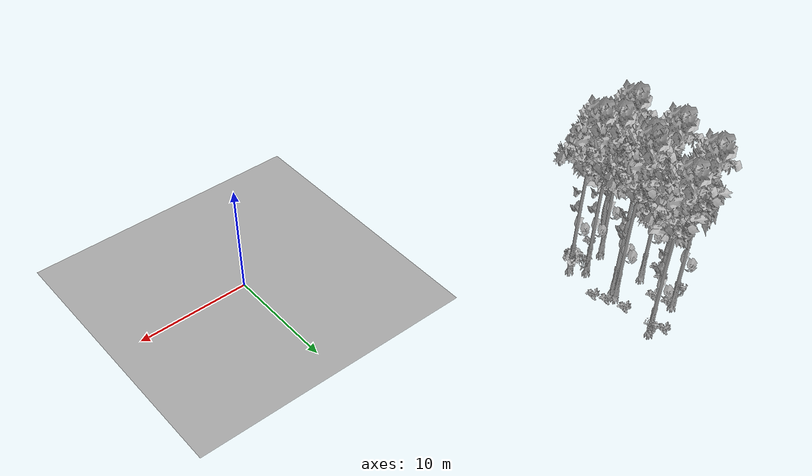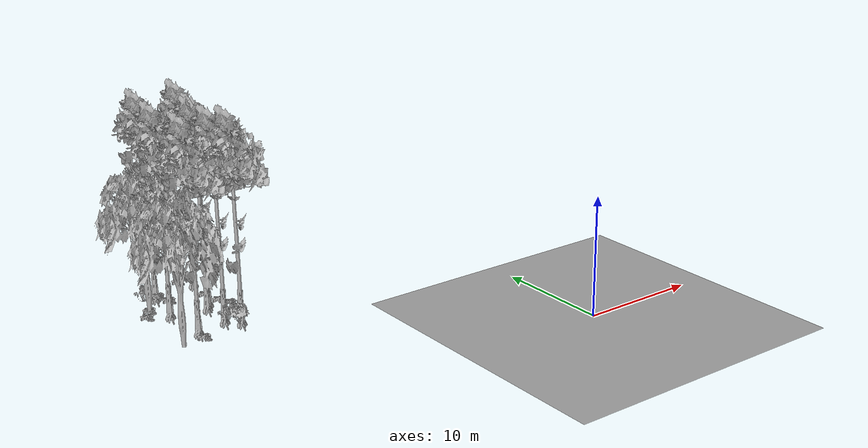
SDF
<sdf version="1.7">
 <world name="default">
  <model name="ground_plane">
   <static>1</static>
   <link name="link">
    <collision name="collision">
     <pose>-50 0 0 0 -0 0</pose>
     <geometry><plane><normal>0 0 1</normal><size>80 80</size></plane></geometry>
     <surface><contact><ode><min_depth>0.01</min_depth><max_vel>0</max_vel></ode></contact></surface>
    </collision>
    <visual name="grass">
     <cast_shadows>0</cast_shadows>
     <geometry>
      <mesh>
       <scale>0.46714285714285714 0.46714285714285714 0.1</scale>
       <uri>file://grass_plane/meshes/grass_plane.dae</uri>
      </mesh>
     </geometry>
    </visual>
   </link>
  </model>
  <model name="Tree 129">
   <static>1</static>
   <pose>-23.40892433570481 17.28746921560525 0 1.57079 -0 0</pose>
   <link name="link">
    <collision name="collision">
     <geometry><mesh><scale>3.5 5 3.5</scale><uri>model://tree_9/meshes/tree_9.obj</uri></mesh></geometry>
    </collision>
    <visual name="visual">
     <geometry><mesh><scale>3.5 5 3.5</scale><uri>model://tree_9/meshes/tree_9.obj</uri></mesh></geometry>
    </visual>
   </link>
  </model>
  <model name="Tree 136">
   <static>1</static>
   <pose>-27.603602183344186 21.934277363882046 0 1.57079 -0 0</pose>
   <link name="link">
    <collision name="collision">
     <geometry><mesh><scale>3.5 5 3.5</scale><uri>model://tree_2/meshes/tree_2.obj</uri></mesh></geometry>
    </collision>
    <visual name="visual">
     <geometry><mesh><scale>3.5 5 3.5</scale><uri>model://tree_2/meshes/tree_2.obj</uri></mesh></geometry>
    </visual>
   </link>
  </model>
  <model name="Tree 303">
   <static>1</static>
   <pose>-25.700586785334423 24.637079907568292 0 1.57079 -0 0</pose>
   <link name="link">
    <collision name="collision">
     <geometry><mesh><scale>3.5 5 3.5</scale><uri>model://tree_9/meshes/tree_9.obj</uri></mesh></geometry>
    </collision>
    <visual name="visual">
     <geometry><mesh><scale>3.5 5 3.5</scale><uri>model://tree_9/meshes/tree_9.obj</uri></mesh></geometry>
    </visual>
   </link>
  </model>
  <model name="Tree 304">
   <static>1</static>
   <pose>-21.881352826807394 25.359205514353903 0 1.57079 -0 0</pose>
   <link name="link">
    <collision name="collision">
     <geometry><mesh><scale>3.5 5 3.5</scale><uri>model://tree_9/meshes/tree_9.obj</uri></mesh></geometry>
    </collision>
    <visual name="visual">
     <geometry><mesh><scale>3.5 5 3.5</scale><uri>model://tree_9/meshes/tree_9.obj</uri></mesh></geometry>
    </visual>
   </link>
  </model>
  <model name="Tree 388">
   <static>1</static>
   <pose>-23.294179598649023 20.310925493503532 0 1.57079 -0 0</pose>
   <link name="link">
    <collision name="collision">
     <geometry><mesh><scale>3.5 5 3.5</scale><uri>model://tree_9/meshes/tree_9.obj</uri></mesh></geometry>
    </collision>
    <visual name="visual">
     <geometry><mesh><scale>3.5 5 3.5</scale><uri>model://tree_9/meshes/tree_9.obj</uri></mesh></geometry>
    </visual>
   </link>
  </model>
  <model name="Tree 436">
   <static>1</static>
   <pose>-26.03589402461475 16.6128923784523 0 1.57079 -0 0</pose>
   <link name="link">
    <collision name="collision">
     <geometry><mesh><scale>3.5 5 3.5</scale><uri>model://tree_9/meshes/tree_9.obj</uri></mesh></geometry>
    </collision>
    <visual name="visual">
     <geometry><mesh><scale>3.5 5 3.5</scale><uri>model://tree_9/meshes/tree_9.obj</uri></mesh></geometry>
    </visual>
   </link>
  </model>
  <model name="Tree 487">
   <static>1</static>
   <pose>-22.853979682084734 20.948290147728173 0 1.57079 -0 0</pose>
   <link name="link">
    <collision name="collision">
     <geometry><mesh><scale>3.5 5 3.5</scale><uri>model://tree_9/meshes/tree_9.obj</uri></mesh></geometry>
    </collision>
    <visual name="visual">
     <geometry><mesh><scale>3.5 5 3.5</scale><uri>model://tree_9/meshes/tree_9.obj</uri></mesh></geometry>
    </visual>
   </link>
  </model>
  <model name="Tree 537">
   <static>1</static>
   <pose>-28.34727057013489 14.73686172754035 0 1.57079 -0 0</pose>
   <link name="link">
    <collision name="collision">
     <geometry><mesh><scale>3.5 5 3.5</scale><uri>model://tree_2/meshes/tree_2.obj</uri></mesh></geometry>
    </collision>
    <visual name="visual">
     <geometry><mesh><scale>3.5 5 3.5</scale><uri>model://tree_2/meshes/tree_2.obj</uri></mesh></geometry>
    </visual>
   </link>
  </model>
  <model name="Tree 601">
   <static>1</static>
   <pose>-22.458807775539917 16.252764671156505 0 1.57079 -0 0</pose>
   <link name="link">
    <collision name="collision">
     <geometry><mesh><scale>3.5 5 3.5</scale><uri>model://tree_9/meshes/tree_9.obj</uri></mesh></geometry>
    </collision>
    <visual name="visual">
     <geometry><mesh><scale>3.5 5 3.5</scale><uri>model://tree_9/meshes/tree_9.obj</uri></mesh></geometry>
    </visual>
   </link>
  </model>
  <model name="Tree 612">
   <static>1</static>
   <pose>-26.329051728064684 20.812638374236784 0 1.57079 -0 0</pose>
   <link name="link">
    <collision name="collision">
     <geometry><mesh><scale>3.5 5 3.5</scale><uri>model://tree_9/meshes/tree_9.obj</uri></mesh></geometry>
    </collision>
    <visual name="visual">
     <geometry><mesh><scale>3.5 5 3.5</scale><uri>model://tree_9/meshes/tree_9.obj</uri></mesh></geometry>
    </visual>
   </link>
  </model>
  <model name="Bush 14">
   <static>1</static>
   <pose>-23.03264223540435 25.894125162868534 0 1.57079 -0 0</pose>
   <link name="link">
    <collision name="collision">
     <geometry><mesh><scale>2 2 2</scale><uri>model://bush_2/meshes/bush_2.obj</uri></mesh></geometry>
     <surface><contact><collide_without_contact>false</collide_without_contact></contact></surface>
    </collision>
    <visual name="visual">
     <geometry><mesh><scale>2 2 2</scale><uri>model://bush_2/meshes/bush_2.obj</uri></mesh></geometry>
    </visual>
   </link>
  </model>
  <model name="Bush 26">
   <static>1</static>
   <pose>-22.888693122174896 15.851306059260295 0 1.57079 -0 0</pose>
   <link name="link">
    <collision name="collision">
     <geometry><mesh><scale>2 2 2</scale><uri>model://bush_1/meshes/bush_1.obj</uri></mesh></geometry>
     <surface><contact><collide_without_contact>false</collide_without_contact></contact></surface>
    </collision>
    <visual name="visual">
     <geometry><mesh><scale>2 2 2</scale><uri>model://bush_1/meshes/bush_1.obj</uri></mesh></geometry>
    </visual>
   </link>
  </model>
  <model name="Bush 97">
   <static>1</static>
   <pose>-21.62113764359651 19.598484132745206 0 1.57079 -0 0</pose>
   <link name="link">
    <collision name="collision">
     <geometry><mesh><scale>2 2 2</scale><uri>model://bush_2/meshes/bush_2.obj</uri></mesh></geometry>
     <surface><contact><collide_without_contact>false</collide_without_contact></contact></surface>
    </collision>
    <visual name="visual">
     <geometry><mesh><scale>2 2 2</scale><uri>model://bush_2/meshes/bush_2.obj</uri></mesh></geometry>
    </visual>
   </link>
  </model>
  <model name="Bush 110">
   <static>1</static>
   <pose>-22.080700465748013 20.64742308127783 0 1.57079 -0 0</pose>
   <link name="link">
    <collision name="collision">
     <geometry><mesh><scale>2 2 2</scale><uri>model://bush_2/meshes/bush_2.obj</uri></mesh></geometry>
     <surface><contact><collide_without_contact>false</collide_without_contact></contact></surface>
    </collision>
    <visual name="visual">
     <geometry><mesh><scale>2 2 2</scale><uri>model://bush_2/meshes/bush_2.obj</uri></mesh></geometry>
    </visual>
   </link>
  </model>
  <model name="Bush 116">
   <static>1</static>
   <pose>-23.362835297587644 16.91259485121951 0 1.57079 -0 0</pose>
   <link name="link">
    <collision name="collision">
     <geometry><mesh><scale>2 2 2</scale><uri>model://bush_4/meshes/bush_4.obj</uri></mesh></geometry>
     <surface><contact><collide_without_contact>false</collide_without_contact></contact></surface>
    </collision>
    <visual name="visual">
     <geometry><mesh><scale>2 2 2</scale><uri>model://bush_4/meshes/bush_4.obj</uri></mesh></geometry>
    </visual>
   </link>
  </model>
  <model name="Bush 377">
   <static>1</static>
   <pose>-26.410448484760643 14.962787972349787 0 1.57079 -0 0</pose>
   <link name="link">
    <collision name="collision">
     <geometry><mesh><scale>2 2 2</scale><uri>model://bush_2/meshes/bush_2.obj</uri></mesh></geometry>
     <surface><contact><collide_without_contact>false</collide_without_contact></contact></surface>
    </collision>
    <visual name="visual">
     <geometry><mesh><scale>2 2 2</scale><uri>model://bush_2/meshes/bush_2.obj</uri></mesh></geometry>
    </visual>
   </link>
  </model>
  <model name="Bush 403">
   <static>1</static>
   <pose>-25.70761787458653 24.184698932840917 0 1.57079 -0 0</pose>
   <link name="link">
    <collision name="collision">
     <geometry><mesh><scale>2 2 2</scale><uri>model://bush_2/meshes/bush_2.obj</uri></mesh></geometry>
     <surface><contact><collide_without_contact>false</collide_without_contact></contact></surface>
    </collision>
    <visual name="visual">
     <geometry><mesh><scale>2 2 2</scale><uri>model://bush_2/meshes/bush_2.obj</uri></mesh></geometry>
    </visual>
   </link>
  </model>
  <model name="Bush 416">
   <static>1</static>
   <pose>-27.56929098832884 21.949422588332162 0 1.57079 -0 0</pose>
   <link name="link">
    <collision name="collision">
     <geometry><mesh><scale>2 2 2</scale><uri>model://bush_2/meshes/bush_2.obj</uri></mesh></geometry>
     <surface><contact><collide_without_contact>false</collide_without_contact></contact></surface>
    </collision>
    <visual name="visual">
     <geometry><mesh><scale>2 2 2</scale><uri>model://bush_2/meshes/bush_2.obj</uri></mesh></geometry>
    </visual>
   </link>
  </model>
  <model name="Bush 425">
   <static>1</static>
   <pose>-22.477452533587208 22.258564319463908 0 1.57079 -0 0</pose>
   <link name="link">
    <collision name="collision">
     <geometry><mesh><scale>2 2 2</scale><uri>model://bush_2/meshes/bush_2.obj</uri></mesh></geometry>
     <surface><contact><collide_without_contact>false</collide_without_contact></contact></surface>
    </collision>
    <visual name="visual">
     <geometry><mesh><scale>2 2 2</scale><uri>model://bush_2/meshes/bush_2.obj</uri></mesh></geometry>
    </visual>
   </link>
  </model>
  <model name="Bush 573">
   <static>1</static>
   <pose>-28.262485715980816 20.93530583405954 0 1.57079 -0 0</pose>
   <link name="link">
    <collision name="collision">
     <geometry><mesh><scale>2 2 2</scale><uri>model://bush_2/meshes/bush_2.obj</uri></mesh></geometry>
     <surface><contact><collide_without_contact>false</collide_without_contact></contact></surface>
    </collision>
    <visual name="visual">
     <geometry><mesh><scale>2 2 2</scale><uri>model://bush_2/meshes/bush_2.obj</uri></mesh></geometry>
    </visual>
   </link>
  </model>
  <model name="Bush 590">
   <static>1</static>
   <pose>-26.900944469483697 24.281833985859407 0 1.57079 -0 0</pose>
   <link name="link">
    <collision name="collision">
     <geometry><mesh><scale>2 2 2</scale><uri>model://bush_4/meshes/bush_4.obj</uri></mesh></geometry>
     <surface><contact><collide_without_contact>false</collide_without_contact></contact></surface>
    </collision>
    <visual name="visual">
     <geometry><mesh><scale>2 2 2</scale><uri>model://bush_4/meshes/bush_4.obj</uri></mesh></geometry>
    </visual>
   </link>
  </model>
  <model name="Bush 605">
   <static>1</static>
   <pose>-21.376829817688762 25.845029038162977 0 1.57079 -0 0</pose>
   <link name="link">
    <collision name="collision">
     <geometry><mesh><scale>2 2 2</scale><uri>model://bush_5/meshes/bush_5.obj</uri></mesh></geometry>
     <surface><contact><collide_without_contact>false</collide_without_contact></contact></surface>
    </collision>
    <visual name="visual">
     <geometry><mesh><scale>2 2 2</scale><uri>model://bush_5/meshes/bush_5.obj</uri></mesh></geometry>
    </visual>
   </link>
  </model>
  <model name="Bush 620">
   <static>1</static>
   <pose>-25.37243890978468 22.873080882331905 0 1.57079 -0 0</pose>
   <link name="link">
    <collision name="collision">
     <geometry><mesh><scale>2 2 2</scale><uri>model://bush_2/meshes/bush_2.obj</uri></mesh></geometry>
     <surface><contact><collide_without_contact>false</collide_without_contact></contact></surface>
    </collision>
    <visual name="visual">
     <geometry><mesh><scale>2 2 2</scale><uri>model://bush_2/meshes/bush_2.obj</uri></mesh></geometry>
    </visual>
   </link>
  </model>
 </world>
</sdf>
